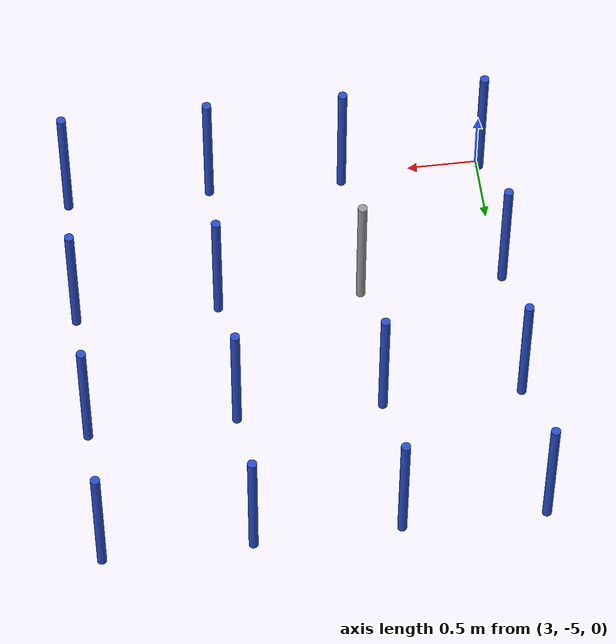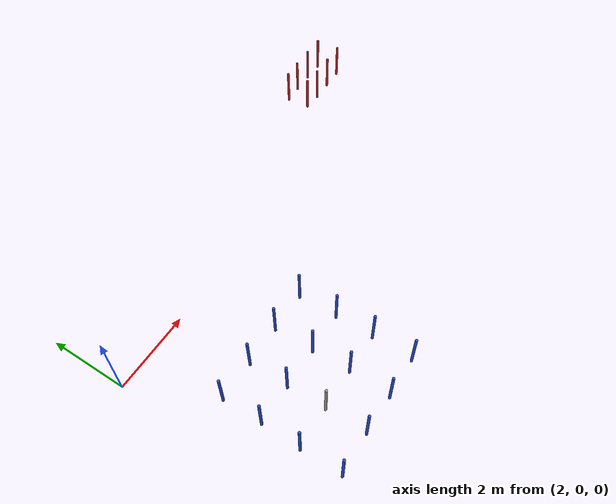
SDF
<sdf version="1.7">
 <world name="default">
  <gravity>0 0 -9.8</gravity>
  <physics name="default_physics" default="0" type="ode">
   <max_step_size>0.001</max_step_size>
   <real_time_factor>1</real_time_factor>
   <real_time_update_rate>1000</real_time_update_rate>
  </physics>
  <light name="Warehouse_CeilingLight_003" type="point">
   <pose>0 0 9 0 -0 0</pose>
   <diffuse>0.5 0.5 0.5 1</diffuse>
   <specular>0.2 0.2 0.2 1</specular>
   <attenuation>
    <range>80</range>
    <constant>0.3</constant>
    <linear>0.01</linear>
    <quadratic>0.001</quadratic>
   </attenuation>
   <direction>0.1 0.1 -1</direction>
   <spot><inner_angle>0</inner_angle><outer_angle>0</outer_angle><falloff>0</falloff></spot>
  </light>
  <magnetic_field>6e-06 2.3e-05 -4.2e-05</magnetic_field>
  <atmosphere type="adiabatic"/>
  <scene><ambient>0.4 0.4 0.4 1</ambient><background>0.7 0.7 0.7 1</background><shadows>1</shadows></scene>
  <audio><device>default</device></audio>
  <spherical_coordinates>
   <surface_model>EARTH_WGS84</surface_model>
   <latitude_deg>0</latitude_deg>
   <longitude_deg>0</longitude_deg>
   <elevation>0</elevation>
   <heading_deg>0</heading_deg>
  </spherical_coordinates>
  <light name="user_point_light_0" type="point">
   <pose>4.24341 42.2777 1 0 -0 0</pose>
   <diffuse>0.5 0.5 0.5 1</diffuse>
   <specular>0.1 0.1 0.1 1</specular>
   <attenuation>
    <range>20</range>
    <constant>0.5</constant>
    <linear>0.01</linear>
    <quadratic>0.001</quadratic>
   </attenuation>
   <cast_shadows>0</cast_shadows>
   <direction>0 0 -1</direction>
   <spot><inner_angle>0</inner_angle><outer_angle>0</outer_angle><falloff>0</falloff></spot>
  </light>
  <model name="unit_cylinder_clone">
   <pose>6.00333 -3.98193 0.432979 -0.000156 0.000117 0.024723</pose>
   <link name="link">
    <inertial>
     <mass>1</mass>
     <inertia><ixx>0.145833</ixx><ixy>0</ixy><ixz>0</ixz><iyy>0.145833</iyy><iyz>0</iyz><izz>0.125</izz></inertia>
    </inertial>
    <collision name="collision">
     <geometry><cylinder><radius>0.0323306</radius><length>1</length></cylinder></geometry>
    </collision>
    <visual name="visual">
     <geometry><cylinder><radius>0.0323306</radius><length>1</length></cylinder></geometry>
     <material>
      <script><name>Gazebo/Blue</name><uri>file://media/materials/scripts/gazebo.material</uri></script>
     </material>
    </visual>
   </link>
  </model>
  <model name="unit_cylinder_clone_0">
   <pose>4.99582 -3.97402 0.432989 -0.000186 0.000155 0.021022</pose>
   <link name="link">
    <inertial>
     <mass>1</mass>
     <inertia><ixx>0.145833</ixx><ixy>0</ixy><ixz>0</ixz><iyy>0.145833</iyy><iyz>0</iyz><izz>0.125</izz></inertia>
    </inertial>
    <collision name="collision">
     <geometry><cylinder><radius>0.0323306</radius><length>1</length></cylinder></geometry>
    </collision>
    <visual name="visual">
     <geometry><cylinder><radius>0.0323306</radius><length>1</length></cylinder></geometry>
     <material>
      <script><name>Gazebo/Blue</name><uri>file://media/materials/scripts/gazebo.material</uri></script>
     </material>
    </visual>
   </link>
  </model>
  <model name="unit_cylinder_clone_1">
   <pose>3.98529 -4.98685 0.43298 -0.000203 0.000177 0.017338</pose>
   <link name="link">
    <inertial>
     <mass>1</mass>
     <inertia><ixx>0.145833</ixx><ixy>0</ixy><ixz>0</ixz><iyy>0.145833</iyy><iyz>0</iyz><izz>0.125</izz></inertia>
    </inertial>
    <collision name="collision">
     <geometry><cylinder><radius>0.0323306</radius><length>1</length></cylinder></geometry>
    </collision>
    <visual name="visual">
     <geometry><cylinder><radius>0.0323306</radius><length>1</length></cylinder></geometry>
     <material>
      <script><name>Gazebo/Blue</name><uri>file://media/materials/scripts/gazebo.material</uri></script>
     </material>
    </visual>
   </link>
  </model>
  <model name="unit_cylinder_clone_2">
   <pose>3.9794 -3.98139 0.432981 -0.00021 0.0002 0.017715</pose>
   <link name="link">
    <inertial>
     <mass>1</mass>
     <inertia><ixx>0.145833</ixx><ixy>0</ixy><ixz>0</ixz><iyy>0.145833</iyy><iyz>0</iyz><izz>0.125</izz></inertia>
    </inertial>
    <collision name="collision">
     <geometry><cylinder><radius>0.0323306</radius><length>1</length></cylinder></geometry>
    </collision>
    <visual name="visual">
     <geometry><cylinder><radius>0.0323306</radius><length>1</length></cylinder></geometry>
     <material>
      <script><name>Gazebo/Grey</name><uri>file://media/materials/scripts/gazebo.material</uri></script>
     </material>
    </visual>
   </link>
  </model>
  <model name="unit_box">
   <pose>4.32587 -4.3356 -518449 -3.0478 -0.041862 -0.001028</pose>
   <link name="link">
    <inertial>
     <mass>1</mass>
     <inertia>
      <ixx>0.166667</ixx>
      <ixy>0</ixy>
      <ixz>0</ixz>
      <iyy>0.166667</iyy>
      <iyz>0</iyz>
      <izz>0.166667</izz>
     </inertia>
    </inertial>
    <collision name="collision"><geometry><box><size>3.78523 1.52272 0.08719</size></box></geometry></collision>
    <visual name="visual">
     <geometry><box><size>3.78523 1.52272 0.08719</size></box></geometry>
     <material>
      <script><name>Gazebo/Blue</name><uri>file://media/materials/scripts/gazebo.material</uri></script>
     </material>
    </visual>
   </link>
  </model>
  <model name="unit_cylinder_clone_2_clone">
   <pose>2.95982 -3.9955 0.432979 -0.000176 0.000146 0.017655</pose>
   <link name="link">
    <inertial>
     <mass>1</mass>
     <inertia><ixx>0.145833</ixx><ixy>0</ixy><ixz>0</ixz><iyy>0.145833</iyy><iyz>0</iyz><izz>0.125</izz></inertia>
    </inertial>
    <collision name="collision">
     <geometry><cylinder><radius>0.0323306</radius><length>1</length></cylinder></geometry>
    </collision>
    <visual name="visual">
     <geometry><cylinder><radius>0.0323306</radius><length>1</length></cylinder></geometry>
     <material>
      <script><name>Gazebo/Blue</name><uri>file://media/materials/scripts/gazebo.material</uri></script>
     </material>
    </visual>
   </link>
  </model>
  <model name="unit_cylinder_clone_2_clone_0">
   <pose>2.97087 -5.00987 0.432977 0.00014 0.000101 0.020736</pose>
   <link name="link">
    <inertial>
     <mass>1</mass>
     <inertia><ixx>0.145833</ixx><ixy>0</ixy><ixz>0</ixz><iyy>0.145833</iyy><iyz>0</iyz><izz>0.125</izz></inertia>
    </inertial>
    <collision name="collision">
     <geometry><cylinder><radius>0.0323306</radius><length>1</length></cylinder></geometry>
    </collision>
    <visual name="visual">
     <geometry><cylinder><radius>0.0323306</radius><length>1</length></cylinder></geometry>
     <material>
      <script><name>Gazebo/Blue</name><uri>file://media/materials/scripts/gazebo.material</uri></script>
     </material>
    </visual>
   </link>
  </model>
  <model name="unit_cylinder_clone_2_clone_1">
   <pose>6.00099 -2.00065 0.432981 -0.000201 0.000189 0.018008</pose>
   <link name="link">
    <inertial>
     <mass>1</mass>
     <inertia><ixx>0.145833</ixx><ixy>0</ixy><ixz>0</ixz><iyy>0.145833</iyy><iyz>0</iyz><izz>0.125</izz></inertia>
    </inertial>
    <collision name="collision">
     <geometry><cylinder><radius>0.0323306</radius><length>1</length></cylinder></geometry>
    </collision>
    <visual name="visual">
     <geometry><cylinder><radius>0.0323306</radius><length>1</length></cylinder></geometry>
     <material>
      <script><name>Gazebo/Blue</name><uri>file://media/materials/scripts/gazebo.material</uri></script>
     </material>
    </visual>
   </link>
  </model>
  <model name="unit_cylinder_clone_2_clone_2">
   <pose>6.00646 -3.00607 0.432979 -0.00017 0.000136 0.01754</pose>
   <link name="link">
    <inertial>
     <mass>1</mass>
     <inertia><ixx>0.145833</ixx><ixy>0</ixy><ixz>0</ixz><iyy>0.145833</iyy><iyz>0</iyz><izz>0.125</izz></inertia>
    </inertial>
    <collision name="collision">
     <geometry><cylinder><radius>0.0323306</radius><length>1</length></cylinder></geometry>
    </collision>
    <visual name="visual">
     <geometry><cylinder><radius>0.0323306</radius><length>1</length></cylinder></geometry>
     <material>
      <script><name>Gazebo/Blue</name><uri>file://media/materials/scripts/gazebo.material</uri></script>
     </material>
    </visual>
   </link>
  </model>
  <model name="unit_cylinder_clone_2_clone_3">
   <pose>4.97446 -2.00154 0.432985 -0.000112 9.5e-05 0.017489</pose>
   <link name="link">
    <inertial>
     <mass>1</mass>
     <inertia><ixx>0.145833</ixx><ixy>0</ixy><ixz>0</ixz><iyy>0.145833</iyy><iyz>0</iyz><izz>0.125</izz></inertia>
    </inertial>
    <collision name="collision">
     <geometry><cylinder><radius>0.0323306</radius><length>1</length></cylinder></geometry>
    </collision>
    <visual name="visual">
     <geometry><cylinder><radius>0.0323306</radius><length>1</length></cylinder></geometry>
     <material>
      <script><name>Gazebo/Blue</name><uri>file://media/materials/scripts/gazebo.material</uri></script>
     </material>
    </visual>
   </link>
  </model>
  <model name="unit_cylinder_clone_2_clone_4">
   <pose>4.97147 -3.01936 0.432979 -0.000158 0.000114 0.017542</pose>
   <link name="link">
    <inertial>
     <mass>1</mass>
     <inertia><ixx>0.145833</ixx><ixy>0</ixy><ixz>0</ixz><iyy>0.145833</iyy><iyz>0</iyz><izz>0.125</izz></inertia>
    </inertial>
    <collision name="collision">
     <geometry><cylinder><radius>0.0323306</radius><length>1</length></cylinder></geometry>
    </collision>
    <visual name="visual">
     <geometry><cylinder><radius>0.0323306</radius><length>1</length></cylinder></geometry>
     <material>
      <script><name>Gazebo/Blue</name><uri>file://media/materials/scripts/gazebo.material</uri></script>
     </material>
    </visual>
   </link>
  </model>
  <model name="unit_cylinder_clone_2_clone_5">
   <pose>3.95371 -3.01613 0.43298 -0.000183 0.00016 0.017955</pose>
   <link name="link">
    <inertial>
     <mass>1</mass>
     <inertia><ixx>0.145833</ixx><ixy>0</ixy><ixz>0</ixz><iyy>0.145833</iyy><iyz>0</iyz><izz>0.125</izz></inertia>
    </inertial>
    <collision name="collision">
     <geometry><cylinder><radius>0.0323306</radius><length>1</length></cylinder></geometry>
    </collision>
    <visual name="visual">
     <geometry><cylinder><radius>0.0323306</radius><length>1</length></cylinder></geometry>
     <material>
      <script><name>Gazebo/Blue</name><uri>file://media/materials/scripts/gazebo.material</uri></script>
     </material>
    </visual>
   </link>
  </model>
  <model name="unit_cylinder_clone_2_clone_6">
   <pose>3.96043 -2.01105 0.432976 -0.000127 5.4e-05 0.017348</pose>
   <link name="link">
    <inertial>
     <mass>1</mass>
     <inertia><ixx>0.145833</ixx><ixy>0</ixy><ixz>0</ixz><iyy>0.145833</iyy><iyz>0</iyz><izz>0.125</izz></inertia>
    </inertial>
    <collision name="collision">
     <geometry><cylinder><radius>0.0323306</radius><length>1</length></cylinder></geometry>
    </collision>
    <visual name="visual">
     <geometry><cylinder><radius>0.0323306</radius><length>1</length></cylinder></geometry>
     <material>
      <script><name>Gazebo/Blue</name><uri>file://media/materials/scripts/gazebo.material</uri></script>
     </material>
    </visual>
   </link>
  </model>
  <model name="unit_cylinder_clone_2_clone_7">
   <pose>2.9774 -3.01375 0.432977 -0.000137 5.4e-05 0.017638</pose>
   <link name="link">
    <inertial>
     <mass>1</mass>
     <inertia><ixx>0.145833</ixx><ixy>0</ixy><ixz>0</ixz><iyy>0.145833</iyy><iyz>0</iyz><izz>0.125</izz></inertia>
    </inertial>
    <collision name="collision">
     <geometry><cylinder><radius>0.0323306</radius><length>1</length></cylinder></geometry>
    </collision>
    <visual name="visual">
     <geometry><cylinder><radius>0.0323306</radius><length>1</length></cylinder></geometry>
     <material>
      <script><name>Gazebo/Blue</name><uri>file://media/materials/scripts/gazebo.material</uri></script>
     </material>
    </visual>
   </link>
  </model>
  <model name="unit_cylinder_clone_2_clone_8">
   <pose>2.96757 -2.00826 0.432979 -0.000177 0.000144 0.01769</pose>
   <link name="link">
    <inertial>
     <mass>1</mass>
     <inertia><ixx>0.145833</ixx><ixy>0</ixy><ixz>0</ixz><iyy>0.145833</iyy><iyz>0</iyz><izz>0.125</izz></inertia>
    </inertial>
    <collision name="collision">
     <geometry><cylinder><radius>0.0323306</radius><length>1</length></cylinder></geometry>
    </collision>
    <visual name="visual">
     <geometry><cylinder><radius>0.0323306</radius><length>1</length></cylinder></geometry>
     <material>
      <script><name>Gazebo/Blue</name><uri>file://media/materials/scripts/gazebo.material</uri></script>
     </material>
    </visual>
   </link>
  </model>
  <model name="unit_cylinder_clone_2_clone_1_clone">
   <pose>11.5736 1.36793 0.432978 0.000136 -0.000113 0.019428</pose>
   <link name="link">
    <inertial>
     <mass>1</mass>
     <inertia><ixx>0.145833</ixx><ixy>0</ixy><ixz>0</ixz><iyy>0.145833</iyy><iyz>0</iyz><izz>0.125</izz></inertia>
    </inertial>
    <collision name="collision">
     <geometry><cylinder><radius>0.0323306</radius><length>1</length></cylinder></geometry>
    </collision>
    <visual name="visual">
     <geometry><cylinder><radius>0.0323306</radius><length>1</length></cylinder></geometry>
     <material>
      <script><name>Gazebo/Red</name><uri>file://media/materials/scripts/gazebo.material</uri></script>
     </material>
    </visual>
   </link>
  </model>
  <model name="unit_cylinder_clone_2_clone_1_clone_0">
   <pose>12.0729 1.35001 0.432977 0.00011 8.1e-05 0.020422</pose>
   <link name="link">
    <inertial>
     <mass>1</mass>
     <inertia><ixx>0.145833</ixx><ixy>0</ixy><ixz>0</ixz><iyy>0.145833</iyy><iyz>0</iyz><izz>0.125</izz></inertia>
    </inertial>
    <collision name="collision">
     <geometry><cylinder><radius>0.0323306</radius><length>1</length></cylinder></geometry>
    </collision>
    <visual name="visual">
     <geometry><cylinder><radius>0.0323306</radius><length>1</length></cylinder></geometry>
     <material>
      <script><name>Gazebo/Red</name><uri>file://media/materials/scripts/gazebo.material</uri></script>
     </material>
    </visual>
   </link>
  </model>
  <model name="unit_cylinder_clone_2_clone_1_clone_1">
   <pose>12.6644 1.37318 0.432977 8.1e-05 0.000121 0.020828</pose>
   <link name="link">
    <inertial>
     <mass>1</mass>
     <inertia><ixx>0.145833</ixx><ixy>0</ixy><ixz>0</ixz><iyy>0.145833</iyy><iyz>0</iyz><izz>0.125</izz></inertia>
    </inertial>
    <collision name="collision">
     <geometry><cylinder><radius>0.0323306</radius><length>1</length></cylinder></geometry>
    </collision>
    <visual name="visual">
     <geometry><cylinder><radius>0.0323306</radius><length>1</length></cylinder></geometry>
     <material>
      <script><name>Gazebo/Red</name><uri>file://media/materials/scripts/gazebo.material</uri></script>
     </material>
    </visual>
   </link>
  </model>
  <model name="unit_cylinder_clone_2_clone_1_clone_2">
   <pose>13.2653 1.40191 0.432978 -0.000167 8.3e-05 0.017661</pose>
   <link name="link">
    <inertial>
     <mass>1</mass>
     <inertia><ixx>0.145833</ixx><ixy>0</ixy><ixz>0</ixz><iyy>0.145833</iyy><iyz>0</iyz><izz>0.125</izz></inertia>
    </inertial>
    <collision name="collision">
     <geometry><cylinder><radius>0.0323306</radius><length>1</length></cylinder></geometry>
    </collision>
    <visual name="visual">
     <geometry><cylinder><radius>0.0323306</radius><length>1</length></cylinder></geometry>
     <material>
      <script><name>Gazebo/Red</name><uri>file://media/materials/scripts/gazebo.material</uri></script>
     </material>
    </visual>
   </link>
  </model>
  <model name="unit_cylinder_clone_2_clone_1_clone_3">
   <pose>11.5282 1.98738 0.432981 0.000288 5e-06 0.014695</pose>
   <link name="link">
    <inertial>
     <mass>1</mass>
     <inertia><ixx>0.145833</ixx><ixy>0</ixy><ixz>0</ixz><iyy>0.145833</iyy><iyz>0</iyz><izz>0.125</izz></inertia>
    </inertial>
    <collision name="collision">
     <geometry><cylinder><radius>0.0323306</radius><length>1</length></cylinder></geometry>
    </collision>
    <visual name="visual">
     <geometry><cylinder><radius>0.0323306</radius><length>1</length></cylinder></geometry>
     <material>
      <script><name>Gazebo/Red</name><uri>file://media/materials/scripts/gazebo.material</uri></script>
     </material>
    </visual>
   </link>
  </model>
  <model name="unit_cylinder_clone_2_clone_1_clone_4">
   <pose>12.0555 2.02814 0.432986 0.000149 3.9e-05 0.020185</pose>
   <link name="link">
    <inertial>
     <mass>1</mass>
     <inertia><ixx>0.145833</ixx><ixy>0</ixy><ixz>0</ixz><iyy>0.145833</iyy><iyz>0</iyz><izz>0.125</izz></inertia>
    </inertial>
    <collision name="collision">
     <geometry><cylinder><radius>0.0323306</radius><length>1</length></cylinder></geometry>
    </collision>
    <visual name="visual">
     <geometry><cylinder><radius>0.0323306</radius><length>1</length></cylinder></geometry>
     <material>
      <script><name>Gazebo/Red</name><uri>file://media/materials/scripts/gazebo.material</uri></script>
     </material>
    </visual>
   </link>
  </model>
  <model name="unit_cylinder_clone_2_clone_1_clone_5">
   <pose>12.646 2.04706 0.432981 -0.000195 0.000175 0.017471</pose>
   <link name="link">
    <inertial>
     <mass>1</mass>
     <inertia><ixx>0.145833</ixx><ixy>0</ixy><ixz>0</ixz><iyy>0.145833</iyy><iyz>0</iyz><izz>0.125</izz></inertia>
    </inertial>
    <collision name="collision">
     <geometry><cylinder><radius>0.0323306</radius><length>1</length></cylinder></geometry>
    </collision>
    <visual name="visual">
     <geometry><cylinder><radius>0.0323306</radius><length>1</length></cylinder></geometry>
     <material>
      <script><name>Gazebo/Red</name><uri>file://media/materials/scripts/gazebo.material</uri></script>
     </material>
    </visual>
   </link>
  </model>
  <model name="unit_cylinder_clone_2_clone_1_clone_6">
   <pose>13.2339 2.05829 0.432978 -0.000153 8.4e-05 0.017824</pose>
   <link name="link">
    <inertial>
     <mass>1</mass>
     <inertia><ixx>0.145833</ixx><ixy>0</ixy><ixz>0</ixz><iyy>0.145833</iyy><iyz>0</iyz><izz>0.125</izz></inertia>
    </inertial>
    <collision name="collision">
     <geometry><cylinder><radius>0.0323306</radius><length>1</length></cylinder></geometry>
    </collision>
    <visual name="visual">
     <geometry><cylinder><radius>0.0323306</radius><length>1</length></cylinder></geometry>
     <material>
      <script><name>Gazebo/Red</name><uri>file://media/materials/scripts/gazebo.material</uri></script>
     </material>
    </visual>
   </link>
  </model>
  <model name="unit_cylinder_clone_clone">
   <pose>4.94762 -5.01119 0.432988 -0.000181 0.000146 0.024287</pose>
   <link name="link">
    <inertial>
     <mass>1</mass>
     <inertia><ixx>0.145833</ixx><ixy>0</ixy><ixz>0</ixz><iyy>0.145833</iyy><iyz>0</iyz><izz>0.125</izz></inertia>
    </inertial>
    <collision name="collision">
     <geometry><cylinder><radius>0.0323306</radius><length>1</length></cylinder></geometry>
    </collision>
    <visual name="visual">
     <geometry><cylinder><radius>0.0323306</radius><length>1</length></cylinder></geometry>
     <material>
      <script><name>Gazebo/Blue</name><uri>file://media/materials/scripts/gazebo.material</uri></script>
     </material>
    </visual>
   </link>
  </model>
  <model name="unit_cylinder_clone_clone_0">
   <pose>5.97271 -5.00672 0.432978 -0.000169 0.00011 0.024482</pose>
   <link name="link">
    <inertial>
     <mass>1</mass>
     <inertia><ixx>0.145833</ixx><ixy>0</ixy><ixz>0</ixz><iyy>0.145833</iyy><iyz>0</iyz><izz>0.125</izz></inertia>
    </inertial>
    <collision name="collision">
     <geometry><cylinder><radius>0.0323306</radius><length>1</length></cylinder></geometry>
    </collision>
    <visual name="visual">
     <geometry><cylinder><radius>0.0323306</radius><length>1</length></cylinder></geometry>
     <material>
      <script><name>Gazebo/Blue</name><uri>file://media/materials/scripts/gazebo.material</uri></script>
     </material>
    </visual>
   </link>
  </model>
 </world>
</sdf>
